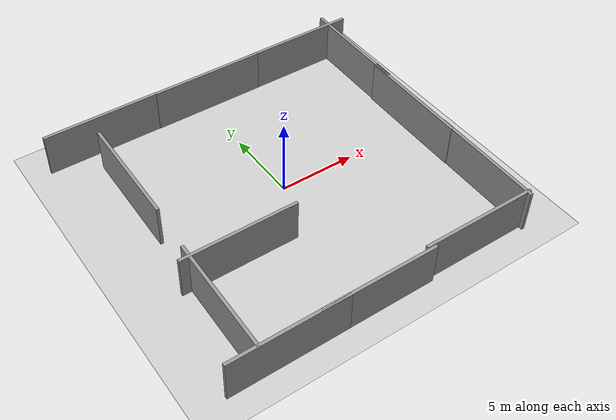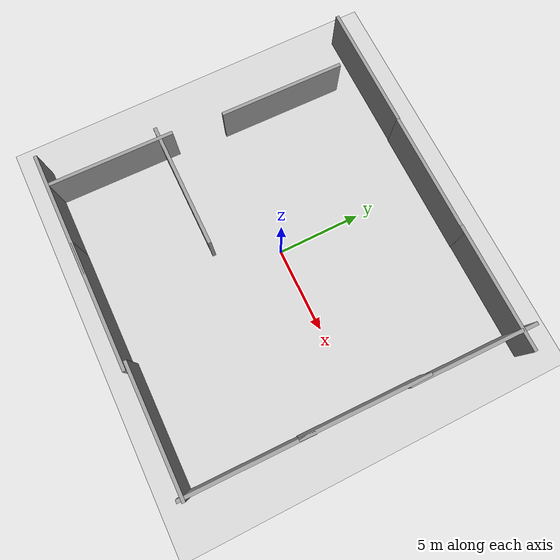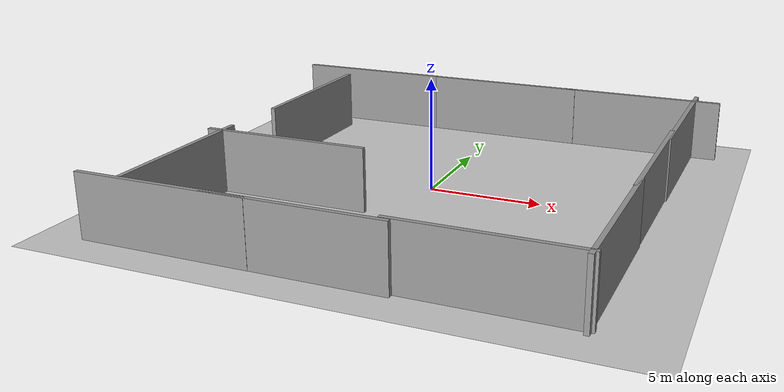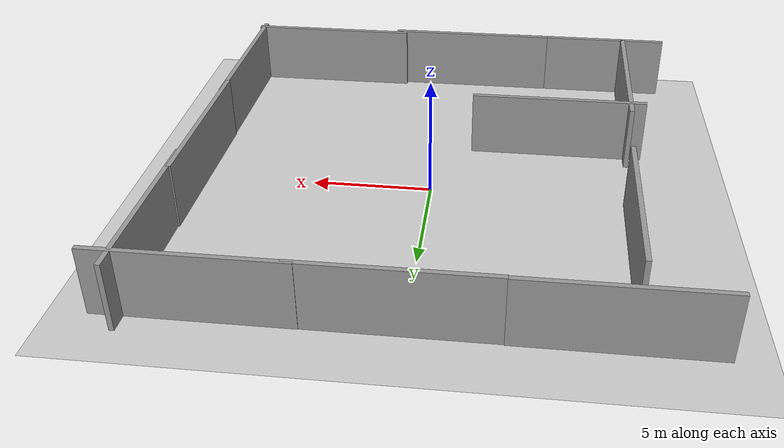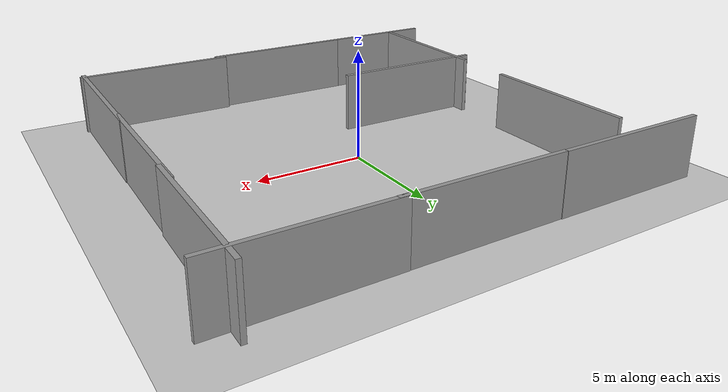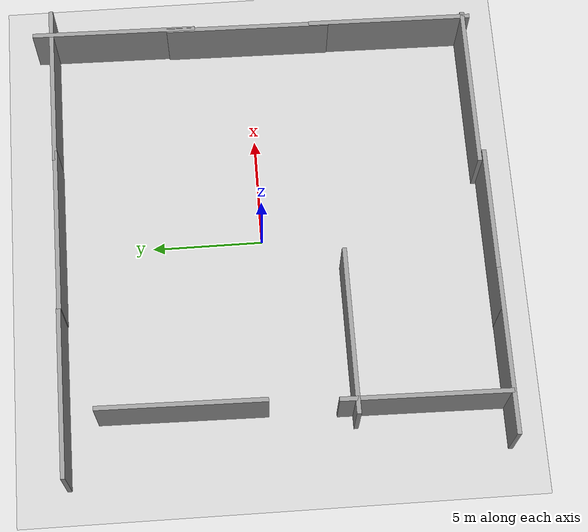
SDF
<sdf version="1.7">
 <world name="default">
  <light name="sun" type="directional">
   <pose>0 0 10 0 -0 0</pose>
   <diffuse>0.8 0.8 0.8 1</diffuse>
   <specular>0.2 0.2 0.2 1</specular>
   <attenuation>
    <range>1000</range>
    <constant>0.9</constant>
    <linear>0.01</linear>
    <quadratic>0.001</quadratic>
   </attenuation>
   <direction>-0.5 0.1 -0.9</direction>
   <spot><inner_angle>0</inner_angle><outer_angle>0</outer_angle><falloff>0</falloff></spot>
  </light>
  <model name="ground_plane">
   <static>1</static>
   <link name="link">
    <collision name="collision">
     <geometry><plane><normal>0 0 1</normal><size>100 100</size></plane></geometry>
     <surface>
      <contact><collide_bitmask>65535</collide_bitmask></contact>
      <friction><ode><mu>100</mu><mu2>50</mu2></ode></friction>
     </surface>
    </collision>
    <visual name="visual">
     <cast_shadows>0</cast_shadows>
     <geometry><plane><normal>0 0 1</normal><size>100 100</size></plane></geometry>
     <material>
      <script><uri>file://media/materials/scripts/gazebo.material</uri><name>Gazebo/Grey</name></script>
     </material>
    </visual>
   </link>
  </model>
  <physics type="ode">
   <real_time_update_rate>1000</real_time_update_rate>
   <max_step_size>0.001</max_step_size>
   <real_time_factor>1</real_time_factor>
   <ode>
    <solver>
     <type>quick</type>
     <iters>150</iters>
     <precon_iters>0</precon_iters>
     <sor>1.4</sor>
     <use_dynamic_moi_rescaling>1</use_dynamic_moi_rescaling>
    </solver>
    <constraints>
     <cfm>1e-05</cfm>
     <erp>0.2</erp>
     <contact_max_correcting_vel>2000</contact_max_correcting_vel>
     <contact_surface_layer>0.01</contact_surface_layer>
    </constraints>
   </ode>
  </physics>
  <scene><ambient>0.4 0.4 0.4 1</ambient><background>0.7 0.7 0.7 1</background><shadows>1</shadows></scene>
  <gravity>0 0 -9.8</gravity>
  <magnetic_field>6e-06 2.3e-05 -4.2e-05</magnetic_field>
  <atmosphere type="adiabatic"/>
  <spherical_coordinates>
   <surface_model>EARTH_WGS84</surface_model>
   <latitude_deg>0</latitude_deg>
   <longitude_deg>0</longitude_deg>
   <elevation>0</elevation>
   <heading_deg>0</heading_deg>
  </spherical_coordinates>
  <model name="grey_wall_clone">
   <static>1</static>
   <link name="link">
    <pose>0 0 1.4 0 -0 0</pose>
    <collision name="collision"><geometry><box><size>7.5 0.2 2.8</size></box></geometry></collision>
    <visual name="visual">
     <cast_shadows>0</cast_shadows>
     <geometry><box><size>7.5 0.2 2.8</size></box></geometry>
     <material>
      <script>
       <uri>model://grey_wall/materials/scripts</uri>
       <uri>model://grey_wall/materials/textures</uri>
       <name>vrc/grey_wall</name>
      </script>
     </material>
    </visual>
   </link>
   <pose>0.296733 9.08075 0 0 -0 0</pose>
  </model>
  <model name="grey_wall_clone_clone">
   <static>1</static>
   <link name="link">
    <pose>0 0 1.4 0 -0 0</pose>
    <collision name="collision"><geometry><box><size>7.5 0.2 2.8</size></box></geometry></collision>
    <visual name="visual">
     <cast_shadows>0</cast_shadows>
     <geometry><box><size>7.5 0.2 2.8</size></box></geometry>
     <material>
      <script>
       <uri>model://grey_wall/materials/scripts</uri>
       <uri>model://grey_wall/materials/textures</uri>
       <name>vrc/grey_wall</name>
      </script>
     </material>
    </visual>
   </link>
   <pose>7.33381 9.09737 0 0 -0 0</pose>
  </model>
  <model name="grey_wall_clone_clone_0">
   <static>1</static>
   <link name="link">
    <pose>0 0 1.4 0 -0 0</pose>
    <collision name="collision"><geometry><box><size>7.5 0.2 2.8</size></box></geometry></collision>
    <visual name="visual">
     <cast_shadows>0</cast_shadows>
     <geometry><box><size>7.5 0.2 2.8</size></box></geometry>
     <material>
      <script>
       <uri>model://grey_wall/materials/scripts</uri>
       <uri>model://grey_wall/materials/textures</uri>
       <name>vrc/grey_wall</name>
      </script>
     </material>
    </visual>
   </link>
   <pose>-7.18858 9.10797 0 0 -0 0</pose>
  </model>
  <model name="grey_wall_clone_clone_1">
   <static>1</static>
   <link name="link">
    <pose>0 0 1.4 0 -0 0</pose>
    <collision name="collision"><geometry><box><size>7.5 0.2 2.8</size></box></geometry></collision>
    <visual name="visual">
     <cast_shadows>0</cast_shadows>
     <geometry><box><size>7.5 0.2 2.8</size></box></geometry>
     <material>
      <script>
       <uri>model://grey_wall/materials/scripts</uri>
       <uri>model://grey_wall/materials/textures</uri>
       <name>vrc/grey_wall</name>
      </script>
     </material>
    </visual>
   </link>
   <pose>6 -10 0 0 -0 0</pose>
  </model>
  <model name="grey_wall_clone_clone_2">
   <static>1</static>
   <link name="link">
    <pose>0 0 1.4 0 -0 0</pose>
    <collision name="collision"><geometry><box><size>7.5 0.2 2.8</size></box></geometry></collision>
    <visual name="visual">
     <cast_shadows>0</cast_shadows>
     <geometry><box><size>7.5 0.2 2.8</size></box></geometry>
     <material>
      <script>
       <uri>model://grey_wall/materials/scripts</uri>
       <uri>model://grey_wall/materials/textures</uri>
       <name>vrc/grey_wall</name>
      </script>
     </material>
    </visual>
   </link>
   <pose>-1 -10.2264 0 0 -0 0</pose>
  </model>
  <model name="grey_wall_clone_clone_2_clone">
   <static>1</static>
   <link name="link">
    <pose>0 0 1.4 0 -0 0</pose>
    <collision name="collision"><geometry><box><size>7.5 0.2 2.8</size></box></geometry></collision>
    <visual name="visual">
     <cast_shadows>0</cast_shadows>
     <geometry><box><size>7.5 0.2 2.8</size></box></geometry>
     <material>
      <script>
       <uri>model://grey_wall/materials/scripts</uri>
       <uri>model://grey_wall/materials/textures</uri>
       <name>vrc/grey_wall</name>
      </script>
     </material>
    </visual>
   </link>
   <pose>-8.37117 -6.50791 0 0 0 -1.5864</pose>
  </model>
  <model name="grey_wall_clone_clone_2_clone_clone">
   <static>1</static>
   <link name="link">
    <pose>0 0 1.4 0 -0 0</pose>
    <collision name="collision"><geometry><box><size>7.5 0.2 2.8</size></box></geometry></collision>
    <visual name="visual">
     <cast_shadows>0</cast_shadows>
     <geometry><box><size>7.5 0.2 2.8</size></box></geometry>
     <material>
      <script>
       <uri>model://grey_wall/materials/scripts</uri>
       <uri>model://grey_wall/materials/textures</uri>
       <name>vrc/grey_wall</name>
      </script>
     </material>
    </visual>
   </link>
   <pose>-5.24919 -3.54604 0 0 -0 0</pose>
  </model>
  <model name="grey_wall_clone_clone_2_clone_clone_clone">
   <static>1</static>
   <link name="link">
    <pose>0 0 1.4 0 -0 0</pose>
    <collision name="collision"><geometry><box><size>7.5 0.2 2.8</size></box></geometry></collision>
    <visual name="visual">
     <cast_shadows>0</cast_shadows>
     <geometry><box><size>7.5 0.2 2.8</size></box></geometry>
     <material>
      <script>
       <uri>model://grey_wall/materials/scripts</uri>
       <uri>model://grey_wall/materials/textures</uri>
       <name>vrc/grey_wall</name>
      </script>
     </material>
    </visual>
   </link>
   <pose>-6.60824 -10.2346 0 0 -0 0</pose>
  </model>
  <model name="grey_wall_clone_clone_2_clone_clone_0">
   <static>1</static>
   <link name="link">
    <pose>0 0 1.4 0 -0 0</pose>
    <collision name="collision"><geometry><box><size>7.5 0.2 2.8</size></box></geometry></collision>
    <visual name="visual">
     <cast_shadows>0</cast_shadows>
     <geometry><box><size>7.5 0.2 2.8</size></box></geometry>
     <material>
      <script>
       <uri>model://grey_wall/materials/scripts</uri>
       <uri>model://grey_wall/materials/textures</uri>
       <name>vrc/grey_wall</name>
      </script>
     </material>
    </visual>
   </link>
   <pose>-8.0521 3.99553 0 0 0 -1.5864</pose>
  </model>
  <model name="grey_wall_clone_clone_2_clone_clone_1">
   <static>1</static>
   <link name="link">
    <pose>0 0 1.4 0 -0 0</pose>
    <collision name="collision"><geometry><box><size>7.5 0.2 2.8</size></box></geometry></collision>
    <visual name="visual">
     <cast_shadows>0</cast_shadows>
     <geometry><box><size>7.5 0.2 2.8</size></box></geometry>
     <material>
      <script>
       <uri>model://grey_wall/materials/scripts</uri>
       <uri>model://grey_wall/materials/textures</uri>
       <name>vrc/grey_wall</name>
      </script>
     </material>
    </visual>
   </link>
   <pose>9.5953 -6.58052 0 0 0 -1.5864</pose>
  </model>
  <model name="grey_wall_clone_clone_2_clone_clone_1_clone">
   <static>1</static>
   <link name="link">
    <pose>0 0 1.4 0 -0 0</pose>
    <collision name="collision"><geometry><box><size>7.5 0.2 2.8</size></box></geometry></collision>
    <visual name="visual">
     <cast_shadows>0</cast_shadows>
     <geometry><box><size>7.5 0.2 2.8</size></box></geometry>
     <material>
      <script>
       <uri>model://grey_wall/materials/scripts</uri>
       <uri>model://grey_wall/materials/textures</uri>
       <name>vrc/grey_wall</name>
      </script>
     </material>
    </visual>
   </link>
   <pose>9.66798 0.012727 0 0 0 -1.5864</pose>
  </model>
  <model name="grey_wall_clone_clone_2_clone_clone_1_clone_clone">
   <static>1</static>
   <link name="link">
    <pose>0 0 1.4 0 -0 0</pose>
    <collision name="collision"><geometry><box><size>7.5 0.2 2.8</size></box></geometry></collision>
    <visual name="visual">
     <cast_shadows>0</cast_shadows>
     <geometry><box><size>7.5 0.2 2.8</size></box></geometry>
     <material>
      <script>
       <uri>model://grey_wall/materials/scripts</uri>
       <uri>model://grey_wall/materials/textures</uri>
       <name>vrc/grey_wall</name>
      </script>
     </material>
    </visual>
   </link>
   <pose>9.82778 6.21131 0 0 0 -1.5864</pose>
  </model>
 </world>
</sdf>
